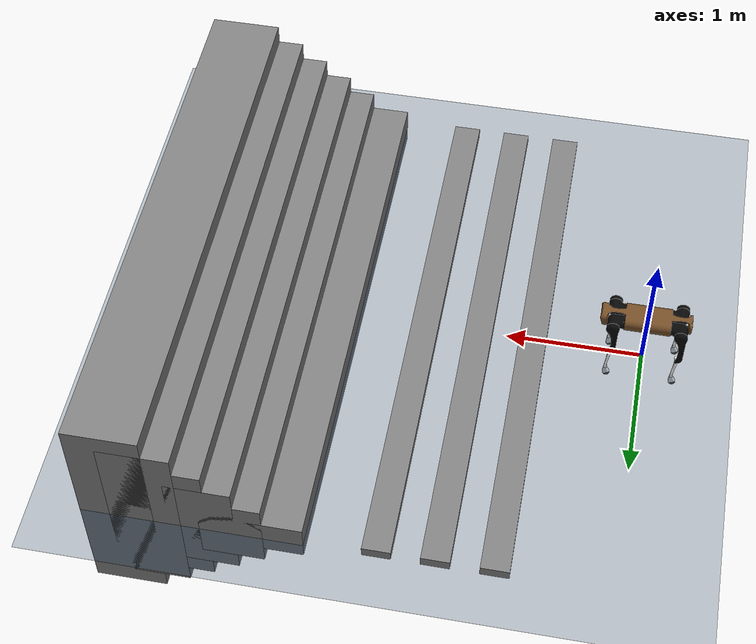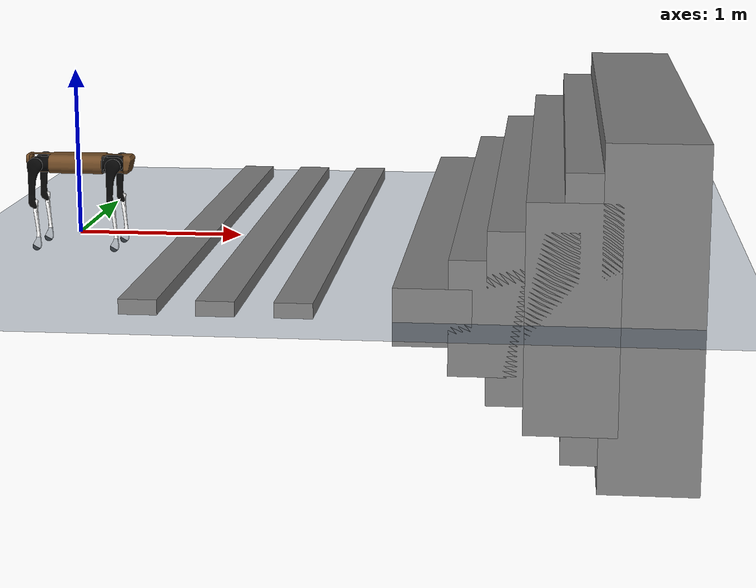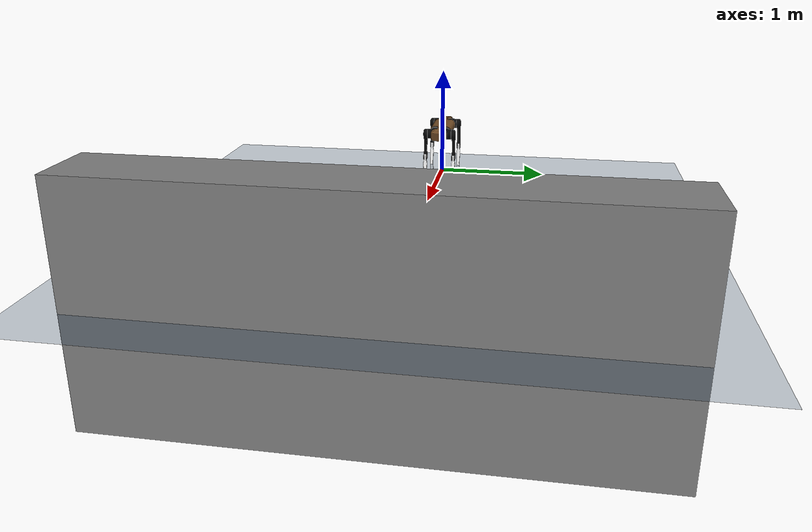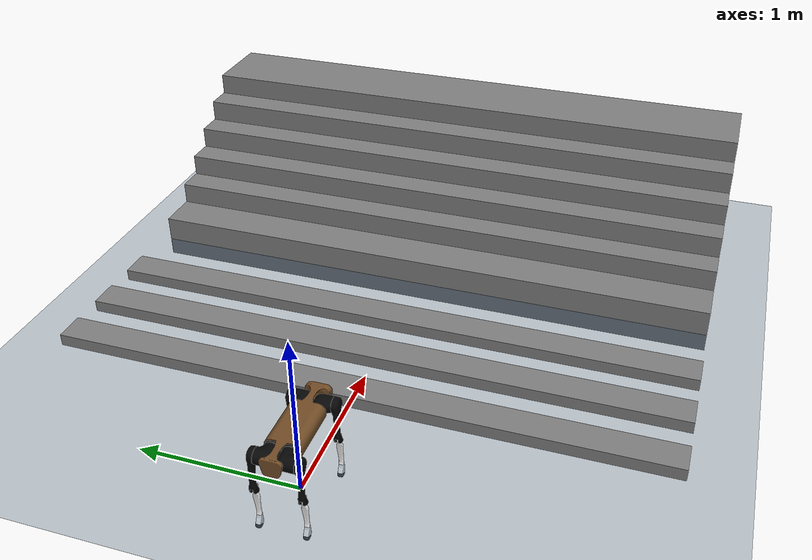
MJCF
<mujoco model="aliengo scene">
  <include file="aliengo.xml"/>

  <statistic center="0 0 0.1" extent="0.8"/>

  <visual>
    <headlight diffuse="0.6 0.6 0.6" ambient="0.3 0.3 0.3" specular="0 0 0"/>
    <rgba haze="0.15 0.25 0.35 1"/>
    <global azimuth="-130" elevation="-20"/>
  </visual>

  <asset>
    <texture type="skybox" builtin="gradient" rgb1="0.3 0.5 0.7" rgb2="0 0 0" width="512" height="3072"/>
    <texture type="2d" name="groundplane" builtin="checker" mark="edge" rgb1="0.2 0.3 0.4" rgb2="0.1 0.2 0.3"
      markrgb="0.8 0.8 0.8" width="300" height="300"/>
    <material name="groundplane" texture="groundplane" texuniform="true" texrepeat="5 5" reflectance="0.2"/>
  </asset>

  <worldbody>
    <light pos="0 0 1.5" dir="0 0 -1" directional="true"/>
    <geom name="floor" size="0 0 0.05" type="plane" material="groundplane"/>

    <geom pos="0.8 0 0.04" type="box"  size="0.1 2 0.04" quat="1.0 0 0 0"/>
    <geom pos="1.2 0 0.04" type="box"  size="0.1 2 0.04" quat="1.0 0 0 0"/>
    <geom pos="1.6 0 0.04" type="box"  size="0.1 2 0.04" quat="1.0 0 0 0"/>

    <geom pos="2.3 0 0.02" type="box"  size="0.2 2 0.15" quat="1.0 0 0 0"/>
    <geom pos="2.6 0 0.02" type="box"  size="0.22 2 0.3" quat="1.0 0 0 0"/>
    <geom pos="2.8 0 0.02" type="box"  size="0.23 2 0.45" quat="1.0 0 0 0"/>
    <geom pos="3 0 0.02" type="box"  size="0.24 2 0.6" quat="1.0 0 0 0"/>
    <geom pos="3.2 0 0.02" type="box"  size="0.25 2 0.75" quat="1.0 0 0 0"/>
    <geom pos="3.4 0 0.02" type="box"  size="0.26 2 0.9" quat="1.0 0 0 0"/>
  </worldbody>
</mujoco>

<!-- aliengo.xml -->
<mujoco model="aliengo">
  <compiler angle="radian" meshdir="assets" texturedir="assets"/>

  <option cone="elliptic" impratio="100" />

  <default>
    <default class="aliengo">
      <geom condim="1" friction="0.6" margin="0.001" group="3"/>
      <joint damping="0.1" armature="0.01"/>
      <default class="foot">
        <geom pos="0 0 -0.25" size="0.0265" priority="1" solimp="0.1 1 0.01"
              condim="6" friction="0.8 0.02 0.01"/>
      </default>
      <default class="visual">
        <geom type="mesh" contype="0" conaffinity="0" group="2"/>
      </default>
    </default>
  </default>

  <asset>
    <material name="trunk" texture="trunk"/>
    <material name="hip" rgba="0.023000 0.023000 0.023000 1" specular="0"/>
    <material name="thigh" rgba="0.023000 0.023000 0.023000 1" specular="0"/>
    <material name="calf_0" rgba="1 1 1 1" specular="0"/>
    <material name="calf_1" rgba="0.25098039 0.25098039 0.25098039 1" specular="0"/>

    <texture type="2d" name="trunk" file="trunk_uv_base_final.png"/>

    <mesh file="trunk.obj"/>
    <mesh file="hip.obj"/>
    <mesh file="hip.obj" scale="1 -1 1" name="hip_y_mirror"/>
    <mesh file="hip.obj" scale="-1 1 1" name="hip_x_mirror"/>
    <mesh file="hip.obj" scale="-1 -1 1" name="hip_xy_mirror"/>
    <mesh file="thigh.obj"/>
    <mesh file="thigh.obj" scale="1 -1 1" name="thigh_mirror"/>
    <mesh file="calf_0.obj" scale="0.025 0.025 0.025"/>
    <mesh file="calf_1.obj" scale="0.025 0.025 0.025"/>
  </asset>

  <visual>
    <map shadowclip="0.2"/>
    <quality shadowsize="8192"/>
  </visual>

  <worldbody>
    <body name="base" pos="0 0 0.43" childclass="aliengo">
      <inertial pos="0.00838951 0.00365535 0.00025994" quat="0.00458073 0.707464 -0.00124096 0.706733"
                mass="12.229" diaginertia="0.284397 0.258774 0.0541128"/>
      <geom name="base" size="0.3235 0.075 0.056" type="box"/>
      <camera name="tracking" mode="trackcom" pos="0 -2 1.6" xyaxes="1 0 0 0 1 1"/>
      <geom class="visual" material="trunk" mesh="trunk"/>
      <freejoint/>
      <site name="imu" pos="0 0 0.05" />
      <body name="FR_hip" pos="0.2407 -0.051 0">
        <inertial pos="-0.0206763 -0.0161444 -1.39762e-05" quat="0.58092 0.574831 0.412459 0.402465" mass="2.139"
                  diaginertia="0.0043606 0.0043277 0.00233028"/>
        <joint name="FR_hip_joint" pos="0 0 0" axis="1 0 0" range="-1.22173 1.22173" actuatorfrcrange="-35.278 35.278"/>
        <geom class="visual" material="hip" mesh="hip_y_mirror"/>
        <body name="FR_thigh" pos="0 -0.0868 0">
          <inertial pos="-0.00464705 0.0202825 -0.039947" quat="0.994998 -0.0906147 0.0414285 -0.0071304" mass="0.771"
                    diaginertia="0.00560787 0.004847 0.00135111"/>
          <joint name="FR_thigh_joint" pos="0 0 0" axis="0 1 0" range="-3.1415 3.1415" actuatorfrcrange="-35.278 35.278"/>
          <geom name="FR_thigh" size="0.02 0.12" pos="0 0 -0.125" quat="1 0 0 0" type="cylinder"/>
          <geom class="visual" material="thigh" mesh="thigh_mirror"/>
          <body name="FR_calf" pos="0 0 -0.25">
            <inertial pos="0.00215606 4.88427e-05 -0.166671" quat="0.708049 0.000982931 0.00120829 0.706161"
                      mass="0.267" diaginertia="0.00269606 0.00268354 5.47714e-05"/>
            <joint name="FR_calf_joint" pos="0 0 0" axis="0 1 0" range="-2.77507 -0.645772"
                   actuatorfrcrange="-44.4 44.4"/>
            <geom name="FR_calf" size="0.02 0.12" pos="0 0 -0.125" quat="1 0 0 0" type="cylinder"/>
            <geom name="FR_foot" class="foot"/>
            <geom class="visual" material="calf_0" mesh="calf_0"/>
            <geom class="visual" material="calf_1" mesh="calf_1"/>
          </body>
        </body>
      </body>
      <body name="FL_hip" pos="0.2407 0.051 0">
        <inertial pos="-0.0206763 0.0161444 -1.39762e-05" quat="0.402465 0.412459 0.574831 0.58092" mass="2.139"
                  diaginertia="0.0043606 0.0043277 0.00233028"/>
        <joint name="FL_hip_joint" pos="0 0 0" axis="1 0 0" range="-1.22173 1.22173" actuatorfrcrange="-35.278 35.278"/>
        <geom class="visual" material="hip" mesh="hip"/>
        <body name="FL_thigh" pos="0 0.0868 0">
          <inertial pos="-0.00464705 -0.0202825 -0.039947" quat="0.994998 0.0906147 0.0414285 0.0071304" mass="0.771"
                    diaginertia="0.00560787 0.004847 0.00135111"/>
          <joint name="FL_thigh_joint" pos="0 0 0" axis="0 1 0" range="-3.1415 3.1415" actuatorfrcrange="-35.278 35.278"/>
          <geom name="FL_thigh" size="0.02 0.12" pos="0 0 -0.125" quat="1 0 0 0" type="cylinder"/>
          <geom class="visual" material="thigh" mesh="thigh"/>
          <body name="FL_calf" pos="0 0 -0.25">
            <inertial pos="0.00215606 4.88427e-05 -0.166671" quat="0.708049 0.000982931 0.00120829 0.706161"
                      mass="0.267" diaginertia="0.00269606 0.00268354 5.47714e-05"/>
            <joint name="FL_calf_joint" pos="0 0 0" axis="0 1 0" range="-2.77507 -0.645772"
                   actuatorfrcrange="-44.4 44.4"/>
            <geom name="FL_calf" size="0.02 0.12" pos="0 0 -0.125" quat="1 0 0 0" type="cylinder"/>
            <geom name="FL_foot" class="foot"/>
            <geom class="visual" material="calf_0" mesh="calf_0"/>
            <geom class="visual" material="calf_1" mesh="calf_1"/>
          </body>
        </body>
      </body>
      <body name="RR_hip" pos="-0.2407 -0.051 0">
        <inertial pos="0.0206763 -0.0161444 -1.39762e-05" quat="0.412459 0.402465 0.58092 0.574831" mass="2.139"
                  diaginertia="0.0043606 0.0043277 0.00233028"/>
        <joint name="RR_hip_joint" pos="0 0 0" axis="1 0 0" range="-1.22173 1.22173" actuatorfrcrange="-35.278 35.278"/>
        <geom class="visual" material="hip" mesh="hip_xy_mirror"/>
        <body name="RR_thigh" pos="0 -0.0868 0">
          <inertial pos="-0.00464705 0.0202825 -0.039947" quat="0.994998 -0.0906147 0.0414285 -0.0071304" mass="0.771"
                    diaginertia="0.00560787 0.004847 0.00135111"/>
          <joint name="RR_thigh_joint" pos="0 0 0" axis="0 1 0" range="-3.1415 3.1415" actuatorfrcrange="-35.278 35.278"/>
          <geom name="RR_thigh" size="0.02 0.12" pos="0 0 -0.125" quat="1 0 0 0" type="cylinder"/>
          <geom class="visual" material="thigh" mesh="thigh_mirror"/>
          <body name="RR_calf" pos="0 0 -0.25">
            <inertial pos="0.00215606 4.88427e-05 -0.166671" quat="0.708049 0.000982931 0.00120829 0.706161"
                      mass="0.267" diaginertia="0.00269606 0.00268354 5.47714e-05"/>
            <joint name="RR_calf_joint" pos="0 0 0" axis="0 1 0" range="-2.77507 -0.645772"
                   actuatorfrcrange="-44.4 44.4"/>
            <geom name="RR_calf" size="0.02 0.12" pos="0 0 -0.125" quat="1 0 0 0" type="cylinder"/>
            <geom name="RR_foot" class="foot"/>
            <geom class="visual" material="calf_0" mesh="calf_0"/>
            <geom class="visual" material="calf_1" mesh="calf_1"/>
          </body>
        </body>
      </body>
      <body name="RL_hip" pos="-0.2407 0.051 0">
        <inertial pos="0.0206763 0.0161444 -1.39762e-05" quat="0.574831 0.58092 0.402465 0.412459" mass="2.139"
                  diaginertia="0.0043606 0.0043277 0.00233028"/>
        <joint name="RL_hip_joint" pos="0 0 0" axis="1 0 0" range="-1.22173 1.22173" actuatorfrcrange="-35.278 35.278"/>
        <geom class="visual" material="hip" mesh="hip_x_mirror"/>
        <body name="RL_thigh" pos="0 0.0868 0">
          <inertial pos="-0.00464705 -0.0202825 -0.039947" quat="0.994998 0.0906147 0.0414285 0.0071304" mass="0.771"
                    diaginertia="0.00560787 0.004847 0.00135111"/>
          <joint name="RL_thigh_joint" pos="0 0 0" axis="0 1 0" range="-3.1415 3.1415" actuatorfrcrange="-35.278 35.278"/>
          <geom name="RL_thigh" size="0.02 0.12" pos="0 0 -0.125" quat="1 0 0 0" type="cylinder"/>
          <geom class="visual" material="thigh" mesh="thigh"/>
          <body name="RL_calf" pos="0 0 -0.25">
            <inertial pos="0.00215606 4.88427e-05 -0.166671" quat="0.708049 0.000982931 0.00120829 0.706161"
                      mass="0.267" diaginertia="0.00269606 0.00268354 5.47714e-05"/>
            <joint name="RL_calf_joint" pos="0 0 0" axis="0 1 0" range="-2.77507 -0.645772"
                   actuatorfrcrange="-44.4 44.4"/>
            <geom name="RL_calf" size="0.02 0.12" pos="0 0 -0.125" quat="1 0 0 0" type="cylinder"/>
            <geom name="RL_foot" class="foot"/>
            <geom class="visual" material="calf_0" mesh="calf_0"/>
            <geom class="visual" material="calf_1" mesh="calf_1"/>
          </body>
        </body>
      </body>
    </body>
  </worldbody>

  <actuator>
    <motor name="FR_hip" joint="FR_hip_joint" />
    <motor name="FR_thigh" joint="FR_thigh_joint" />
    <motor name="FR_calf" joint="FR_calf_joint" />
    <motor name="FL_hip" joint="FL_hip_joint" />
    <motor name="FL_thigh" joint="FL_thigh_joint" />
    <motor name="FL_calf" joint="FL_calf_joint" />
    <motor name="RR_hip" joint="RR_hip_joint" />
    <motor name="RR_thigh" joint="RR_thigh_joint" />
    <motor name="RR_calf" joint="RR_calf_joint" />
    <motor name="RL_hip" joint="RL_hip_joint" />
    <motor name="RL_thigh" joint="RL_thigh_joint" />
    <motor name="RL_calf" joint="RL_calf_joint" />
  </actuator>

  <sensor>
    <jointpos name="FR_hip_pos" joint="FR_hip_joint" />
    <jointpos name="FR_thigh_pos" joint="FR_thigh_joint" />
    <jointpos name="FR_calf_pos" joint="FR_calf_joint" />
    <jointpos name="FL_hip_pos" joint="FL_hip_joint" />
    <jointpos name="FL_thigh_pos" joint="FL_thigh_joint" />
    <jointpos name="FL_calf_pos" joint="FL_calf_joint" />
    <jointpos name="RR_hip_pos" joint="RR_hip_joint" />
    <jointpos name="RR_thigh_pos" joint="RR_thigh_joint" />
    <jointpos name="RR_calf_pos" joint="RR_calf_joint" />
    <jointpos name="RL_hip_pos" joint="RL_hip_joint" />
    <jointpos name="RL_thigh_pos" joint="RL_thigh_joint" />
    <jointpos name="RL_calf_pos" joint="RL_calf_joint" />

    <jointvel name="FR_hip_vel" joint="FR_hip_joint" />
    <jointvel name="FR_thigh_vel" joint="FR_thigh_joint" />
    <jointvel name="FR_calf_vel" joint="FR_calf_joint" />
    <jointvel name="FL_hip_vel" joint="FL_hip_joint" />
    <jointvel name="FL_thigh_vel" joint="FL_thigh_joint" />
    <jointvel name="FL_calf_vel" joint="FL_calf_joint" />
    <jointvel name="RR_hip_vel" joint="RR_hip_joint" />
    <jointvel name="RR_thigh_vel" joint="RR_thigh_joint" />
    <jointvel name="RR_calf_vel" joint="RR_calf_joint" />
    <jointvel name="RL_hip_vel" joint="RL_hip_joint" />
    <jointvel name="RL_thigh_vel" joint="RL_thigh_joint" />
    <jointvel name="RL_calf_vel" joint="RL_calf_joint" />

    <jointactuatorfrc name="FR_hip_torque" joint="FR_hip_joint" noise="0.01" />
    <jointactuatorfrc name="FR_thigh_torque" joint="FR_thigh_joint" noise="0.01" />
    <jointactuatorfrc name="FR_calf_torque" joint="FR_calf_joint" noise="0.01" />
    <jointactuatorfrc name="FL_hip_torque" joint="FL_hip_joint" noise="0.01" />
    <jointactuatorfrc name="FL_thigh_torque" joint="FL_thigh_joint" noise="0.01" />
    <jointactuatorfrc name="FL_calf_torque" joint="FL_calf_joint" noise="0.01" />
    <jointactuatorfrc name="RR_hip_torque" joint="RR_hip_joint" noise="0.01" />
    <jointactuatorfrc name="RR_thigh_torque" joint="RR_thigh_joint" noise="0.01" />
    <jointactuatorfrc name="RR_calf_torque" joint="RR_calf_joint" noise="0.01" />
    <jointactuatorfrc name="RL_hip_torque" joint="RL_hip_joint" noise="0.01" />
    <jointactuatorfrc name="RL_thigh_torque" joint="RL_thigh_joint" noise="0.01" />
    <jointactuatorfrc name="RL_calf_torque" joint="RL_calf_joint" noise="0.01" />

    <framequat name="imu_quat" objtype="site" objname="imu" />
    <gyro name="imu_gyro" site="imu" />
    <accelerometer name="imu_acc" site="imu" />
    <framepos name="frame_pos" objtype="site" objname="imu" />
    <framelinvel name="frame_vel" objtype="site" objname="imu" />
  </sensor>

  <keyframe>
    <key name="home" qpos="0 0 0.38 1 0 0 0 0 0.8 -1.5 0 0.8 -1.5 0 0.8 -1.5 0 0.8 -1.5"/>
  </keyframe>
</mujoco>
